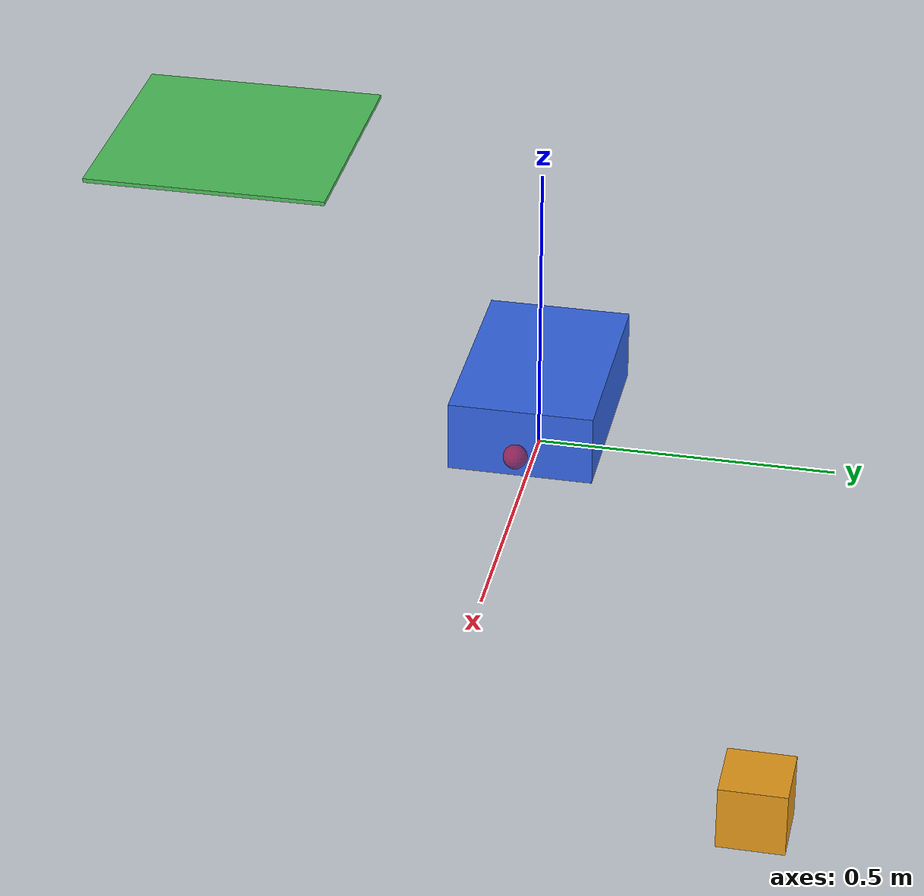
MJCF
<mujoco model="apyrobo_pickplace_arena">
  <option timestep="0.002" gravity="0 0 -9.81"/>

  <visual>
    <global offwidth="1280" offheight="720"/>
  </visual>

  <asset>
    <texture name="grid" type="2d" builtin="checker" width="512" height="512"
             rgb1="0.83 0.85 0.87" rgb2="0.72 0.75 0.79"/>
    <material name="grid" texture="grid" texrepeat="16 16" reflectance="0.1"/>
  </asset>

  <worldbody>
    <camera name="overview" pos="1.9 -1.9 1.5"
            xyaxes="0.648 0.762 0 -0.359 0.305 0.882"/>
    <light directional="true" pos="0 0 3" dir="0 0 -1"/>
    <geom name="floor" type="plane" size="10 10 0.1" material="grid"
          friction="1 0.005 0.0001"/>
    <!-- Delivery zone marker — visual only, no collision. -->
    <geom name="delivery_pad" type="box" pos="-1.0 -0.8 0.004"
          size="0.24 0.24 0.004" contype="0" conaffinity="0"
          rgba="0.30 0.75 0.35 1"/>

    <body name="base" pos="0 0 0.10">
      <joint name="base_x" type="slide" axis="1 0 0" damping="10"/>
      <joint name="base_y" type="slide" axis="0 1 0" damping="10"/>
      <joint name="base_yaw" type="hinge" axis="0 0 1" damping="4"/>
      <geom name="chassis" type="box" size="0.18 0.12 0.06"
            density="800" rgba="0.20 0.40 0.90 1"/>
      <site name="grip_site" pos="0.22 0 0" size="0.02" rgba="1 0 0 0.5"/>
    </body>

    <body name="package" pos="1.0 0.5 0.06">
      <freejoint name="package_free"/>
      <geom name="package_geom" type="box" size="0.05 0.05 0.05"
            density="200" friction="1 0.005 0.0001" rgba="0.90 0.60 0.10 1"/>
    </body>
  </worldbody>

  <actuator>
    <position name="drive_x" joint="base_x" kp="120" kv="40" forcerange="-120 120"/>
    <position name="drive_y" joint="base_y" kp="120" kv="40" forcerange="-120 120"/>
    <position name="drive_yaw" joint="base_yaw" kp="20" kv="6" forcerange="-40 40"/>
  </actuator>

  <equality>
    <weld name="grasp_weld" body1="base" body2="package" active="false"/>
  </equality>
</mujoco>
